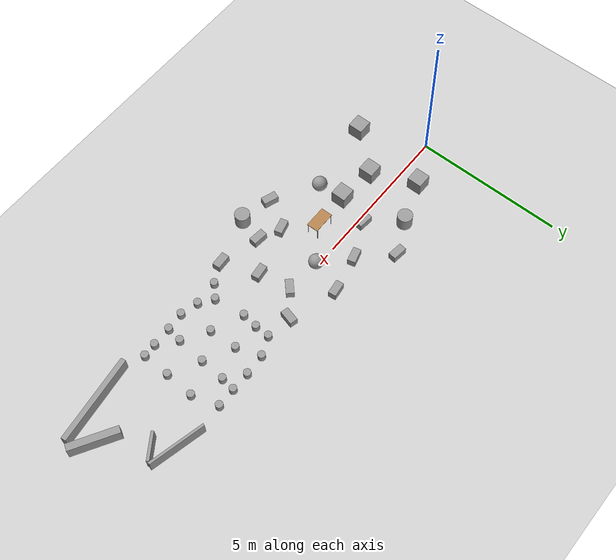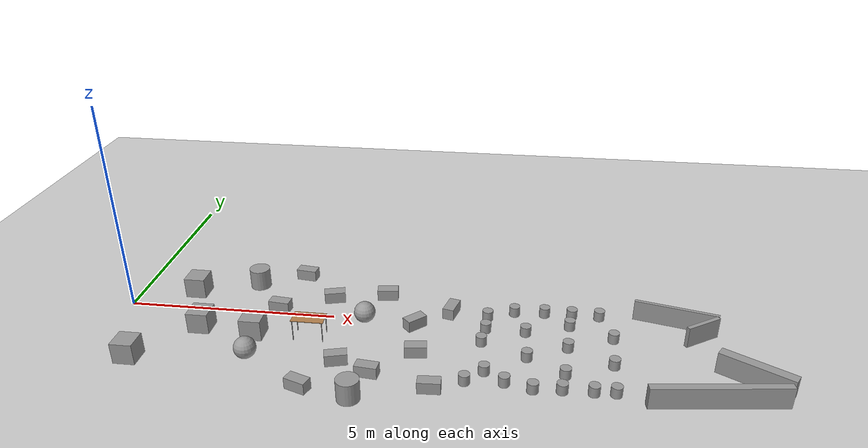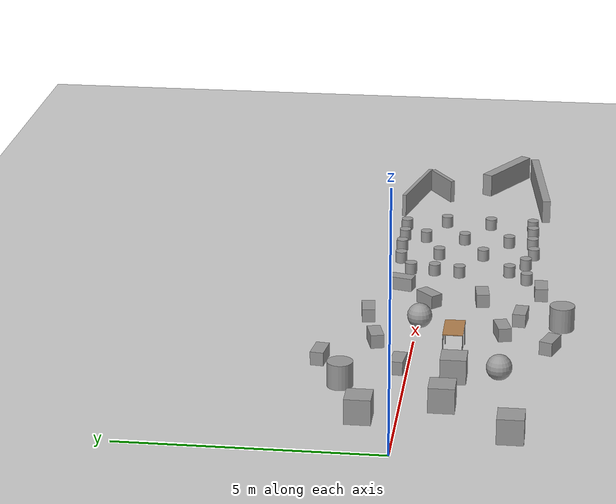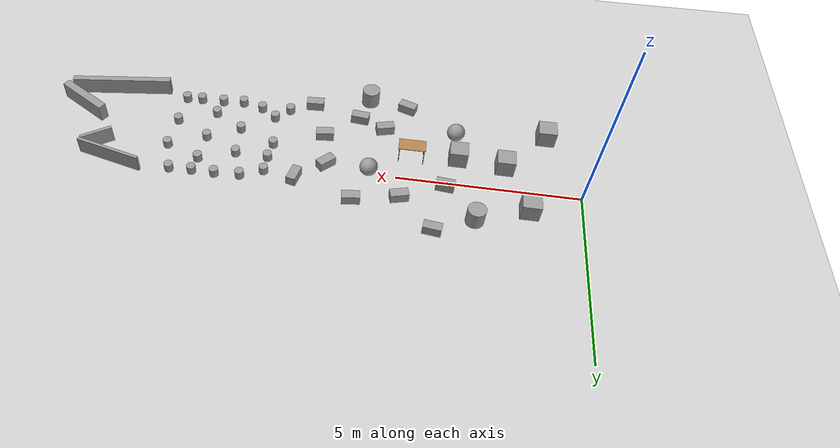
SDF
<sdf version="1.6">
 <world name="default">
  <light name="sun" type="directional">
   <pose>0 0 5 0 -0 0</pose>
   <diffuse>0.8 0.8 0.8 1</diffuse>
   <specular>0.2 0.2 0.2 1</specular>
   <attenuation>
    <range>1000</range>
    <constant>0.9</constant>
    <linear>0.01</linear>
    <quadratic>0.001</quadratic>
   </attenuation>
   <direction>-0.5 0.1 -0.9</direction>
  </light>
  <model name="ground_plane">
   <static>1</static>
   <link name="link">
    <collision name="collision">
     <geometry><plane><normal>0 0 1</normal><size>50 50</size></plane></geometry>
     <surface><friction><ode><mu>100</mu><mu2>50</mu2></ode></friction></surface>
    </collision>
    <visual name="visual">
     <cast_shadows>0</cast_shadows>
     <geometry><plane><normal>0 0 1</normal><size>50 50</size></plane></geometry>
     <material>
      <script><uri>file://media/materials/scripts/gazebo.material</uri><name>Gazebo/Grey</name></script>
     </material>
    </visual>
   </link>
  </model>
  <gravity>0 0 -9.8</gravity>
  <magnetic_field>6e-06 2.3e-05 -4.2e-05</magnetic_field>
  <atmosphere type="adiabatic"/>
  <physics name="default_physics" default="0" type="ode">
   <max_step_size>0.001</max_step_size>
   <real_time_factor>1</real_time_factor>
   <real_time_update_rate>1000</real_time_update_rate>
  </physics>
  <scene><ambient>0.4 0.4 0.4 1</ambient><background>0.7 0.7 0.7 1</background><shadows>1</shadows></scene>
  <spherical_coordinates>
   <surface_model>EARTH_WGS84</surface_model>
   <latitude_deg>0</latitude_deg>
   <longitude_deg>0</longitude_deg>
   <elevation>0</elevation>
   <heading_deg>0</heading_deg>
  </spherical_coordinates>
  <model name="unit_box">
   <pose>1.41205 0.691309 0.25 0 -0 0</pose>
   <link name="link">
    <inertial>
     <mass>1</mass>
     <inertia>
      <ixx>0.166667</ixx>
      <ixy>0</ixy>
      <ixz>0</ixz>
      <iyy>0.166667</iyy>
      <iyz>0</iyz>
      <izz>0.166667</izz>
     </inertia>
    </inertial>
    <collision name="collision"><geometry><box><size>0.5 0.5 0.5</size></box></geometry></collision>
    <visual name="visual">
     <geometry><box><size>0.5 0.5 0.5</size></box></geometry>
     <material>
      <script><name>Gazebo/Grey</name><uri>file://media/materials/scripts/gazebo.material</uri></script>
     </material>
    </visual>
   </link>
  </model>
  <model name="unit_box_0">
   <pose>0.915735 -2.09725 0.25 0 -0 0</pose>
   <link name="link">
    <inertial>
     <mass>1</mass>
     <inertia>
      <ixx>0.166667</ixx>
      <ixy>0</ixy>
      <ixz>0</ixz>
      <iyy>0.166667</iyy>
      <iyz>0</iyz>
      <izz>0.166667</izz>
     </inertia>
    </inertial>
    <collision name="collision"><geometry><box><size>0.5 0.5 0.5</size></box></geometry></collision>
    <visual name="visual">
     <geometry><box><size>0.5 0.5 0.5</size></box></geometry>
     <material>
      <script><name>Gazebo/Grey</name><uri>file://media/materials/scripts/gazebo.material</uri></script>
     </material>
    </visual>
   </link>
  </model>
  <model name="table">
   <static>1</static>
   <link name="link">
    <collision name="surface">
     <pose>0 0 0.5 0 -0 0</pose>
     <geometry><box><size>0.75 0.4 0.015</size></box></geometry>
     <surface><friction><ode><mu>0.6</mu><mu2>0.6</mu2></ode></friction></surface>
    </collision>
    <visual name="visual1">
     <pose>0 0 0.5 0 -0 0</pose>
     <geometry><box><size>0.75 0.4 0.015</size></box></geometry>
     <material>
      <script><uri>file://media/materials/scripts/gazebo.material</uri><name>Gazebo/Wood</name></script>
     </material>
    </visual>
    <collision name="front_left_leg">
     <pose>0.34 0.19 0.25 0 -0 0</pose>
     <geometry><cylinder><radius>0.01</radius><length>0.5</length></cylinder></geometry>
    </collision>
    <visual name="front_left_leg">
     <pose>0.34 0.19 0.25 0 -0 0</pose>
     <geometry><cylinder><radius>0.01</radius><length>0.5</length></cylinder></geometry>
     <material>
      <script><uri>file://media/materials/scripts/gazebo.material</uri><name>Gazebo/Grey</name></script>
     </material>
    </visual>
    <collision name="front_right_leg">
     <pose>0.34 -0.19 0.25 0 -0 0</pose>
     <geometry><cylinder><radius>0.01</radius><length>0.5</length></cylinder></geometry>
    </collision>
    <visual name="front_right_leg">
     <pose>0.34 -0.19 0.25 0 -0 0</pose>
     <geometry><cylinder><radius>0.01</radius><length>0.5</length></cylinder></geometry>
     <material>
      <script><uri>file://media/materials/scripts/gazebo.material</uri><name>Gazebo/Grey</name></script>
     </material>
    </visual>
    <collision name="back_right_leg">
     <pose>-0.34 -0.19 0.25 0 -0 0</pose>
     <geometry><cylinder><radius>0.01</radius><length>0.5</length></cylinder></geometry>
    </collision>
    <visual name="back_right_leg">
     <pose>-0.34 -0.19 0.25 0 -0 0</pose>
     <geometry><cylinder><radius>0.01</radius><length>0.5</length></cylinder></geometry>
     <material>
      <script><uri>file://media/materials/scripts/gazebo.material</uri><name>Gazebo/Grey</name></script>
     </material>
    </visual>
    <collision name="back_left_leg">
     <pose>-0.34 0.19 0.25 0 -0 0</pose>
     <geometry><cylinder><radius>0.01</radius><length>0.5</length></cylinder></geometry>
    </collision>
    <visual name="back_left_leg">
     <pose>-0.34 0.19 0.25 0 -0 0</pose>
     <geometry><cylinder><radius>0.01</radius><length>0.5</length></cylinder></geometry>
     <material>
      <script><uri>file://media/materials/scripts/gazebo.material</uri><name>Gazebo/Grey</name></script>
     </material>
    </visual>
   </link>
   <pose>4.64498 -0.820975 0 0 -0 0</pose>
  </model>
  <model name="unit_box_1">
   <pose>3.35331 -0.90793 0.25 0 -0 0</pose>
   <link name="link">
    <inertial>
     <mass>1</mass>
     <inertia>
      <ixx>0.166667</ixx>
      <ixy>0</ixy>
      <ixz>0</ixz>
      <iyy>0.166667</iyy>
      <iyz>0</iyz>
      <izz>0.166667</izz>
     </inertia>
    </inertial>
    <collision name="collision"><geometry><box><size>0.5 0.5 0.5</size></box></geometry></collision>
    <visual name="visual">
     <geometry><box><size>0.5 0.5 0.5</size></box></geometry>
     <material>
      <script><name>Gazebo/Grey</name><uri>file://media/materials/scripts/gazebo.material</uri></script>
     </material>
    </visual>
   </link>
  </model>
  <model name="unit_cylinder">
   <pose>2.82975 1.19905 0.25 0 -0 0</pose>
   <link name="link">
    <inertial>
     <mass>1</mass>
     <inertia><ixx>0.145833</ixx><ixy>0</ixy><ixz>0</ixz><iyy>0.145833</iyy><iyz>0</iyz><izz>0.125</izz></inertia>
    </inertial>
    <collision name="collision">
     <geometry><cylinder><radius>0.25</radius><length>0.5</length></cylinder></geometry>
    </collision>
    <visual name="visual">
     <geometry><cylinder><radius>0.25</radius><length>0.5</length></cylinder></geometry>
     <material>
      <script><name>Gazebo/Grey</name><uri>file://media/materials/scripts/gazebo.material</uri></script>
     </material>
    </visual>
   </link>
  </model>
  <model name="unit_sphere">
   <pose>3.45289 -1.7625 0.25 0 -0 0</pose>
   <link name="link">
    <inertial>
     <mass>1</mass>
     <inertia><ixx>0.1</ixx><ixy>0</ixy><ixz>0</ixz><iyy>0.1</iyy><iyz>0</iyz><izz>0.1</izz></inertia>
    </inertial>
    <collision name="collision"><geometry><sphere><radius>0.25</radius></sphere></geometry></collision>
    <visual name="visual">
     <geometry><sphere><radius>0.25</radius></sphere></geometry>
     <material>
      <script><name>Gazebo/Grey</name><uri>file://media/materials/scripts/gazebo.material</uri></script>
     </material>
    </visual>
   </link>
  </model>
  <model name="unit_cylinder_0">
   <pose>5.99885 -2.88496 0.249999 0 -0 0</pose>
   <link name="link">
    <inertial>
     <mass>1</mass>
     <inertia><ixx>0.145833</ixx><ixy>0</ixy><ixz>0</ixz><iyy>0.145833</iyy><iyz>0</iyz><izz>0.125</izz></inertia>
    </inertial>
    <collision name="collision">
     <geometry><cylinder><radius>0.25</radius><length>0.5</length></cylinder></geometry>
    </collision>
    <visual name="visual">
     <geometry><cylinder><radius>0.25</radius><length>0.5</length></cylinder></geometry>
     <material>
      <script><name>Gazebo/Grey</name><uri>file://media/materials/scripts/gazebo.material</uri></script>
     </material>
    </visual>
   </link>
  </model>
  <model name="unit_box_1_clone">
   <pose>3.65355 0.173262 0.137139 0 0 -0.106435</pose>
   <link name="link">
    <inertial>
     <mass>1</mass>
     <inertia>
      <ixx>0.166667</ixx>
      <ixy>0</ixy>
      <ixz>0</ixz>
      <iyy>0.166667</iyy>
      <iyz>0</iyz>
      <izz>0.166667</izz>
     </inertia>
    </inertial>
    <collision name="collision"><geometry><box><size>0.5 0.264919 0.274278</size></box></geometry></collision>
    <visual name="visual">
     <geometry><box><size>0.5 0.264919 0.274278</size></box></geometry>
     <material>
      <script><name>Gazebo/Grey</name><uri>file://media/materials/scripts/gazebo.material</uri></script>
     </material>
    </visual>
   </link>
  </model>
  <model name="unit_box_1_clone_0">
   <pose>5.4644 -1.72747 0.137139 0 -0 0.264746</pose>
   <link name="link">
    <inertial>
     <mass>1</mass>
     <inertia>
      <ixx>0.166667</ixx>
      <ixy>0</ixy>
      <ixz>0</ixz>
      <iyy>0.166667</iyy>
      <iyz>0</iyz>
      <izz>0.166667</izz>
     </inertia>
    </inertial>
    <collision name="collision">
     <geometry><box><size>0.499997 0.264919 0.274278</size></box></geometry>
    </collision>
    <visual name="visual">
     <geometry><box><size>0.499997 0.264919 0.274278</size></box></geometry>
     <material>
      <script><name>Gazebo/Grey</name><uri>file://media/materials/scripts/gazebo.material</uri></script>
     </material>
    </visual>
   </link>
  </model>
  <model name="unit_box_1_clone_0_clone_0">
   <pose>4.85947 0.735005 0.137139 0 -0 0.264497</pose>
   <link name="link">
    <inertial>
     <mass>1</mass>
     <inertia>
      <ixx>0.166667</ixx>
      <ixy>0</ixy>
      <ixz>0</ixz>
      <iyy>0.166667</iyy>
      <iyz>0</iyz>
      <izz>0.166667</izz>
     </inertia>
    </inertial>
    <collision name="collision"><geometry><box><size>0.5 0.264919 0.274278</size></box></geometry></collision>
    <visual name="visual">
     <geometry><box><size>0.5 0.264919 0.274278</size></box></geometry>
     <material>
      <script><name>Gazebo/Grey</name><uri>file://media/materials/scripts/gazebo.material</uri></script>
     </material>
    </visual>
   </link>
  </model>
  <model name="unit_box_1_clone_0_clone_1">
   <pose>7.59435 -2.42171 0.137139 0 -0 0.049901</pose>
   <link name="link">
    <inertial>
     <mass>1</mass>
     <inertia>
      <ixx>0.166667</ixx>
      <ixy>0</ixy>
      <ixz>0</ixz>
      <iyy>0.166667</iyy>
      <iyz>0</iyz>
      <izz>0.166667</izz>
     </inertia>
    </inertial>
    <collision name="collision"><geometry><box><size>0.5 0.264919 0.274278</size></box></geometry></collision>
    <visual name="visual">
     <geometry><box><size>0.5 0.264919 0.274278</size></box></geometry>
     <material>
      <script><name>Gazebo/Grey</name><uri>file://media/materials/scripts/gazebo.material</uri></script>
     </material>
    </visual>
   </link>
  </model>
  <model name="unit_box_1_clone_0_clone_2">
   <pose>4.88443 -2.68683 0.137139 0 0 -0.348845</pose>
   <link name="link">
    <inertial>
     <mass>1</mass>
     <inertia>
      <ixx>0.166667</ixx>
      <ixy>0</ixy>
      <ixz>0</ixz>
      <iyy>0.166667</iyy>
      <iyz>0</iyz>
      <izz>0.166667</izz>
     </inertia>
    </inertial>
    <collision name="collision"><geometry><box><size>0.5 0.264919 0.274278</size></box></geometry></collision>
    <visual name="visual">
     <geometry><box><size>0.5 0.264919 0.274278</size></box></geometry>
     <material>
      <script><name>Gazebo/Grey</name><uri>file://media/materials/scripts/gazebo.material</uri></script>
     </material>
    </visual>
   </link>
  </model>
  <model name="unit_box_1_clone_0_clone_3">
   <pose>6.966 -0.156851 0.137139 0 -0 0.75764</pose>
   <link name="link">
    <inertial>
     <mass>1</mass>
     <inertia>
      <ixx>0.166667</ixx>
      <ixy>0</ixy>
      <ixz>0</ixz>
      <iyy>0.166667</iyy>
      <iyz>0</iyz>
      <izz>0.166667</izz>
     </inertia>
    </inertial>
    <collision name="collision"><geometry><box><size>0.5 0.264919 0.274278</size></box></geometry></collision>
    <visual name="visual">
     <geometry><box><size>0.5 0.264919 0.274278</size></box></geometry>
     <material>
      <script><name>Gazebo/Grey</name><uri>file://media/materials/scripts/gazebo.material</uri></script>
     </material>
    </visual>
   </link>
  </model>
  <model name="unit_box_1_clone_0_clone_4">
   <pose>7.1417 -1.2349 0.137139 0 -0 0.119992</pose>
   <link name="link">
    <inertial>
     <mass>1</mass>
     <inertia>
      <ixx>0.166667</ixx>
      <ixy>0</ixy>
      <ixz>0</ixz>
      <iyy>0.166667</iyy>
      <iyz>0</iyz>
      <izz>0.166667</izz>
     </inertia>
    </inertial>
    <collision name="collision"><geometry><box><size>0.5 0.264919 0.274278</size></box></geometry></collision>
    <visual name="visual">
     <geometry><box><size>0.5 0.264919 0.274278</size></box></geometry>
     <material>
      <script><name>Gazebo/Grey</name><uri>file://media/materials/scripts/gazebo.material</uri></script>
     </material>
    </visual>
   </link>
  </model>
  <model name="unit_box_1_clone_0_clone_5">
   <pose>7.75705 0.468772 0.137139 0 -0 1.31902</pose>
   <link name="link">
    <inertial>
     <mass>1</mass>
     <inertia>
      <ixx>0.166667</ixx>
      <ixy>0</ixy>
      <ixz>0</ixz>
      <iyy>0.166667</iyy>
      <iyz>0</iyz>
      <izz>0.166667</izz>
     </inertia>
    </inertial>
    <collision name="collision"><geometry><box><size>0.5 0.264919 0.274278</size></box></geometry></collision>
    <visual name="visual">
     <geometry><box><size>0.5 0.264919 0.274278</size></box></geometry>
     <material>
      <script><name>Gazebo/Grey</name><uri>file://media/materials/scripts/gazebo.material</uri></script>
     </material>
    </visual>
   </link>
  </model>
  <model name="unit_cylinder_0_clone">
   <pose>8.545 -0.671139 0.121276 0 -1e-06 1e-06</pose>
   <link name="link">
    <inertial>
     <mass>1</mass>
     <inertia><ixx>0.145833</ixx><ixy>0</ixy><ixz>0</ixz><iyy>0.145833</iyy><iyz>0</iyz><izz>0.125</izz></inertia>
    </inertial>
    <collision name="collision">
     <geometry><cylinder><radius>0.1247</radius><length>0.242563</length></cylinder></geometry>
    </collision>
    <visual name="visual">
     <geometry><cylinder><radius>0.1247</radius><length>0.242563</length></cylinder></geometry>
     <material>
      <script><name>Gazebo/Grey</name><uri>file://media/materials/scripts/gazebo.material</uri></script>
     </material>
    </visual>
   </link>
  </model>
  <model name="unit_cylinder_0_clone_0">
   <pose>8.60965 -0.143396 0.121279 0 -0 0</pose>
   <link name="link">
    <inertial>
     <mass>1</mass>
     <inertia><ixx>0.145833</ixx><ixy>0</ixy><ixz>0</ixz><iyy>0.145833</iyy><iyz>0</iyz><izz>0.125</izz></inertia>
    </inertial>
    <collision name="collision">
     <geometry><cylinder><radius>0.1247</radius><length>0.242563</length></cylinder></geometry>
    </collision>
    <visual name="visual">
     <geometry><cylinder><radius>0.1247</radius><length>0.242563</length></cylinder></geometry>
     <material>
      <script><name>Gazebo/Grey</name><uri>file://media/materials/scripts/gazebo.material</uri></script>
     </material>
    </visual>
   </link>
  </model>
  <model name="unit_cylinder_0_clone_1">
   <pose>8.62635 0.360673 0.12128 0 -1e-06 0</pose>
   <link name="link">
    <inertial>
     <mass>1</mass>
     <inertia><ixx>0.145833</ixx><ixy>0</ixy><ixz>0</ixz><iyy>0.145833</iyy><iyz>0</iyz><izz>0.125</izz></inertia>
    </inertial>
    <collision name="collision">
     <geometry><cylinder><radius>0.1247</radius><length>0.242563</length></cylinder></geometry>
    </collision>
    <visual name="visual">
     <geometry><cylinder><radius>0.1247</radius><length>0.242563</length></cylinder></geometry>
     <material>
      <script><name>Gazebo/Grey</name><uri>file://media/materials/scripts/gazebo.material</uri></script>
     </material>
    </visual>
   </link>
  </model>
  <model name="unit_cylinder_0_clone_2">
   <pose>8.67715 -1.72093 0.121281 0 -1e-06 0</pose>
   <link name="link">
    <inertial>
     <mass>1</mass>
     <inertia><ixx>0.145833</ixx><ixy>0</ixy><ixz>0</ixz><iyy>0.145833</iyy><iyz>0</iyz><izz>0.125</izz></inertia>
    </inertial>
    <collision name="collision">
     <geometry><cylinder><radius>0.1247</radius><length>0.242563</length></cylinder></geometry>
    </collision>
    <visual name="visual">
     <geometry><cylinder><radius>0.1247</radius><length>0.242563</length></cylinder></geometry>
     <material>
      <script><name>Gazebo/Grey</name><uri>file://media/materials/scripts/gazebo.material</uri></script>
     </material>
    </visual>
   </link>
  </model>
  <model name="unit_box_3">
   <pose>2.06718 -0.78374 0.25 0 0 -6e-06</pose>
   <link name="link">
    <inertial>
     <mass>1</mass>
     <inertia>
      <ixx>0.166667</ixx>
      <ixy>0</ixy>
      <ixz>0</ixz>
      <iyy>0.166667</iyy>
      <iyz>0</iyz>
      <izz>0.166667</izz>
     </inertia>
    </inertial>
    <collision name="collision"><geometry><box><size>0.5 0.5 0.5</size></box></geometry></collision>
    <visual name="visual">
     <geometry><box><size>0.5 0.5 0.5</size></box></geometry>
     <material>
      <script><name>Gazebo/Grey</name><uri>file://media/materials/scripts/gazebo.material</uri></script>
     </material>
    </visual>
   </link>
  </model>
  <model name="unit_box_1_clone_0_clone_4_clone">
   <pose>6.2153 -2.05672 0.137139 0 0 -0.102986</pose>
   <link name="link">
    <inertial>
     <mass>1</mass>
     <inertia>
      <ixx>0.166667</ixx>
      <ixy>0</ixy>
      <ixz>0</ixz>
      <iyy>0.166667</iyy>
      <iyz>0</iyz>
      <izz>0.166667</izz>
     </inertia>
    </inertial>
    <collision name="collision"><geometry><box><size>0.5 0.264919 0.274278</size></box></geometry></collision>
    <visual name="visual">
     <geometry><box><size>0.5 0.264919 0.274278</size></box></geometry>
     <material>
      <script><name>Gazebo/Grey</name><uri>file://media/materials/scripts/gazebo.material</uri></script>
     </material>
    </visual>
   </link>
  </model>
  <model name="unit_box_1_clone_0_clone_4_clone_0">
   <pose>6.13025 1.00537 0.137139 0 -0 0.119992</pose>
   <link name="link">
    <inertial>
     <mass>1</mass>
     <inertia>
      <ixx>0.166667</ixx>
      <ixy>0</ixy>
      <ixz>0</ixz>
      <iyy>0.166667</iyy>
      <iyz>0</iyz>
      <izz>0.166667</izz>
     </inertia>
    </inertial>
    <collision name="collision"><geometry><box><size>0.5 0.264919 0.274278</size></box></geometry></collision>
    <visual name="visual">
     <geometry><box><size>0.5 0.264919 0.274278</size></box></geometry>
     <material>
      <script><name>Gazebo/Grey</name><uri>file://media/materials/scripts/gazebo.material</uri></script>
     </material>
    </visual>
   </link>
  </model>
  <model name="unit_box_1_clone_0_clone_4_clone_1">
   <pose>3.91643 1.71633 0.137139 0 0 -0.12617</pose>
   <link name="link">
    <inertial>
     <mass>1</mass>
     <inertia>
      <ixx>0.166667</ixx>
      <ixy>0</ixy>
      <ixz>0</ixz>
      <iyy>0.166667</iyy>
      <iyz>0</iyz>
      <izz>0.166667</izz>
     </inertia>
    </inertial>
    <collision name="collision"><geometry><box><size>0.5 0.264919 0.274278</size></box></geometry></collision>
    <visual name="visual">
     <geometry><box><size>0.5 0.264919 0.274278</size></box></geometry>
     <material>
      <script><name>Gazebo/Grey</name><uri>file://media/materials/scripts/gazebo.material</uri></script>
     </material>
    </visual>
   </link>
  </model>
  <model name="unit_sphere_0">
   <pose>5.7666 -0.061668 0.25 0 -0 0</pose>
   <link name="link">
    <inertial>
     <mass>1</mass>
     <inertia><ixx>0.1</ixx><ixy>0</ixy><ixz>0</ixz><iyy>0.1</iyy><iyz>0</iyz><izz>0.1</izz></inertia>
    </inertial>
    <collision name="collision"><geometry><sphere><radius>0.25</radius></sphere></geometry></collision>
    <visual name="visual">
     <geometry><sphere><radius>0.25</radius></sphere></geometry>
     <material>
      <script><name>Gazebo/Grey</name><uri>file://media/materials/scripts/gazebo.material</uri></script>
     </material>
    </visual>
   </link>
  </model>
  <model name="unit_cylinder_0_clone_1_clone">
   <pose>8.28875 -2.09985 0.121273 0 -0 0</pose>
   <link name="link">
    <inertial>
     <mass>1</mass>
     <inertia><ixx>0.145833</ixx><ixy>0</ixy><ixz>0</ixz><iyy>0.145833</iyy><iyz>0</iyz><izz>0.125</izz></inertia>
    </inertial>
    <collision name="collision">
     <geometry><cylinder><radius>0.1247</radius><length>0.242563</length></cylinder></geometry>
    </collision>
    <visual name="visual">
     <geometry><cylinder><radius>0.1247</radius><length>0.242563</length></cylinder></geometry>
     <material>
      <script><name>Gazebo/Grey</name><uri>file://media/materials/scripts/gazebo.material</uri></script>
     </material>
    </visual>
   </link>
  </model>
  <model name="unit_cylinder_0_clone_1_clone_0">
   <pose>9.1195 -2.04909 0.121273 0 -0 0</pose>
   <link name="link">
    <inertial>
     <mass>1</mass>
     <inertia><ixx>0.145833</ixx><ixy>0</ixy><ixz>0</ixz><iyy>0.145833</iyy><iyz>0</iyz><izz>0.125</izz></inertia>
    </inertial>
    <collision name="collision">
     <geometry><cylinder><radius>0.1247</radius><length>0.242563</length></cylinder></geometry>
    </collision>
    <visual name="visual">
     <geometry><cylinder><radius>0.1247</radius><length>0.242563</length></cylinder></geometry>
     <material>
      <script><name>Gazebo/Grey</name><uri>file://media/materials/scripts/gazebo.material</uri></script>
     </material>
    </visual>
   </link>
  </model>
  <model name="unit_cylinder_0_clone_1_clone_1">
   <pose>9.2483 0.62293 0.121282 0 -0 0</pose>
   <link name="link">
    <inertial>
     <mass>1</mass>
     <inertia><ixx>0.145833</ixx><ixy>0</ixy><ixz>0</ixz><iyy>0.145833</iyy><iyz>0</iyz><izz>0.125</izz></inertia>
    </inertial>
    <collision name="collision">
     <geometry><cylinder><radius>0.1247</radius><length>0.242563</length></cylinder></geometry>
    </collision>
    <visual name="visual">
     <geometry><cylinder><radius>0.1247</radius><length>0.242563</length></cylinder></geometry>
     <material>
      <script><name>Gazebo/Grey</name><uri>file://media/materials/scripts/gazebo.material</uri></script>
     </material>
    </visual>
   </link>
  </model>
  <model name="unit_cylinder_0_clone_1_clone_2">
   <pose>9.95675 0.66406 0.121282 0 -0 0</pose>
   <link name="link">
    <inertial>
     <mass>1</mass>
     <inertia><ixx>0.145833</ixx><ixy>0</ixy><ixz>0</ixz><iyy>0.145833</iyy><iyz>0</iyz><izz>0.125</izz></inertia>
    </inertial>
    <collision name="collision">
     <geometry><cylinder><radius>0.1247</radius><length>0.242563</length></cylinder></geometry>
    </collision>
    <visual name="visual">
     <geometry><cylinder><radius>0.1247</radius><length>0.242563</length></cylinder></geometry>
     <material>
      <script><name>Gazebo/Grey</name><uri>file://media/materials/scripts/gazebo.material</uri></script>
     </material>
    </visual>
   </link>
  </model>
  <model name="unit_cylinder_0_clone_1_clone_3">
   <pose>9.7124 -2.19988 0.121282 0 -0 0</pose>
   <link name="link">
    <inertial>
     <mass>1</mass>
     <inertia><ixx>0.145833</ixx><ixy>0</ixy><ixz>0</ixz><iyy>0.145833</iyy><iyz>0</iyz><izz>0.125</izz></inertia>
    </inertial>
    <collision name="collision">
     <geometry><cylinder><radius>0.1247</radius><length>0.242563</length></cylinder></geometry>
    </collision>
    <visual name="visual">
     <geometry><cylinder><radius>0.1247</radius><length>0.242563</length></cylinder></geometry>
     <material>
      <script><name>Gazebo/Grey</name><uri>file://media/materials/scripts/gazebo.material</uri></script>
     </material>
    </visual>
   </link>
  </model>
  <model name="unit_cylinder_0_clone_1_clone_4">
   <pose>10.317 -2.15435 0.121282 0 0 -0.047556</pose>
   <link name="link">
    <inertial>
     <mass>1</mass>
     <inertia><ixx>0.145833</ixx><ixy>0</ixy><ixz>0</ixz><iyy>0.145833</iyy><iyz>0</iyz><izz>0.125</izz></inertia>
    </inertial>
    <collision name="collision">
     <geometry><cylinder><radius>0.1247</radius><length>0.242563</length></cylinder></geometry>
    </collision>
    <visual name="visual">
     <geometry><cylinder><radius>0.1247</radius><length>0.242563</length></cylinder></geometry>
     <material>
      <script><name>Gazebo/Grey</name><uri>file://media/materials/scripts/gazebo.material</uri></script>
     </material>
    </visual>
   </link>
  </model>
  <model name="unit_cylinder_0_clone_1_clone_5">
   <pose>10.9658 -2.14328 0.121282 0 -0 0.032856</pose>
   <link name="link">
    <inertial>
     <mass>1</mass>
     <inertia><ixx>0.145833</ixx><ixy>0</ixy><ixz>0</ixz><iyy>0.145833</iyy><iyz>0</iyz><izz>0.125</izz></inertia>
    </inertial>
    <collision name="collision">
     <geometry><cylinder><radius>0.1247</radius><length>0.242563</length></cylinder></geometry>
    </collision>
    <visual name="visual">
     <geometry><cylinder><radius>0.1247</radius><length>0.242563</length></cylinder></geometry>
     <material>
      <script><name>Gazebo/Grey</name><uri>file://media/materials/scripts/gazebo.material</uri></script>
     </material>
    </visual>
   </link>
  </model>
  <model name="unit_cylinder_0_clone_1_clone_6">
   <pose>10.5955 0.65588 0.121282 0 -0 0</pose>
   <link name="link">
    <inertial>
     <mass>1</mass>
     <inertia><ixx>0.145833</ixx><ixy>0</ixy><ixz>0</ixz><iyy>0.145833</iyy><iyz>0</iyz><izz>0.125</izz></inertia>
    </inertial>
    <collision name="collision">
     <geometry><cylinder><radius>0.1247</radius><length>0.242563</length></cylinder></geometry>
    </collision>
    <visual name="visual">
     <geometry><cylinder><radius>0.1247</radius><length>0.242563</length></cylinder></geometry>
     <material>
      <script><name>Gazebo/Grey</name><uri>file://media/materials/scripts/gazebo.material</uri></script>
     </material>
    </visual>
   </link>
  </model>
  <model name="unit_cylinder_0_clone_1_clone_7">
   <pose>11.2338 0.671365 0.121282 0 -0 0</pose>
   <link name="link">
    <inertial>
     <mass>1</mass>
     <inertia><ixx>0.145833</ixx><ixy>0</ixy><ixz>0</ixz><iyy>0.145833</iyy><iyz>0</iyz><izz>0.125</izz></inertia>
    </inertial>
    <collision name="collision">
     <geometry><cylinder><radius>0.1247</radius><length>0.242563</length></cylinder></geometry>
    </collision>
    <visual name="visual">
     <geometry><cylinder><radius>0.1247</radius><length>0.242563</length></cylinder></geometry>
     <material>
      <script><name>Gazebo/Grey</name><uri>file://media/materials/scripts/gazebo.material</uri></script>
     </material>
    </visual>
   </link>
  </model>
  <model name="unit_cylinder_0_clone_1_clone_8">
   <pose>11.4171 -2.12035 0.121282 0 0 -0.013968</pose>
   <link name="link">
    <inertial>
     <mass>1</mass>
     <inertia><ixx>0.145833</ixx><ixy>0</ixy><ixz>0</ixz><iyy>0.145833</iyy><iyz>0</iyz><izz>0.125</izz></inertia>
    </inertial>
    <collision name="collision">
     <geometry><cylinder><radius>0.1247</radius><length>0.242563</length></cylinder></geometry>
    </collision>
    <visual name="visual">
     <geometry><cylinder><radius>0.1247</radius><length>0.242563</length></cylinder></geometry>
     <material>
      <script><name>Gazebo/Grey</name><uri>file://media/materials/scripts/gazebo.material</uri></script>
     </material>
    </visual>
   </link>
  </model>
  <model name="unit_cylinder_0_clone_1_clone_9">
   <pose>9.57045 -1.11878 0.121281 0 -0 0</pose>
   <link name="link">
    <inertial>
     <mass>1</mass>
     <inertia><ixx>0.145833</ixx><ixy>0</ixy><ixz>0</ixz><iyy>0.145833</iyy><iyz>0</iyz><izz>0.125</izz></inertia>
    </inertial>
    <collision name="collision">
     <geometry><cylinder><radius>0.1247</radius><length>0.242563</length></cylinder></geometry>
    </collision>
    <visual name="visual">
     <geometry><cylinder><radius>0.1247</radius><length>0.242563</length></cylinder></geometry>
     <material>
      <script><name>Gazebo/Grey</name><uri>file://media/materials/scripts/gazebo.material</uri></script>
     </material>
    </visual>
   </link>
  </model>
  <model name="unit_cylinder_0_clone_1_clone_10">
   <pose>9.52595 -0.174898 0.121282 0 -0 0</pose>
   <link name="link">
    <inertial>
     <mass>1</mass>
     <inertia><ixx>0.145833</ixx><ixy>0</ixy><ixz>0</ixz><iyy>0.145833</iyy><iyz>0</iyz><izz>0.125</izz></inertia>
    </inertial>
    <collision name="collision">
     <geometry><cylinder><radius>0.1247</radius><length>0.242563</length></cylinder></geometry>
    </collision>
    <visual name="visual">
     <geometry><cylinder><radius>0.1247</radius><length>0.242563</length></cylinder></geometry>
     <material>
      <script><name>Gazebo/Grey</name><uri>file://media/materials/scripts/gazebo.material</uri></script>
     </material>
    </visual>
   </link>
  </model>
  <model name="unit_cylinder_0_clone_1_clone_11">
   <pose>10.5338 0.184145 0.121282 0 -0 0</pose>
   <link name="link">
    <inertial>
     <mass>1</mass>
     <inertia><ixx>0.145833</ixx><ixy>0</ixy><ixz>0</ixz><iyy>0.145833</iyy><iyz>0</iyz><izz>0.125</izz></inertia>
    </inertial>
    <collision name="collision">
     <geometry><cylinder><radius>0.1247</radius><length>0.242563</length></cylinder></geometry>
    </collision>
    <visual name="visual">
     <geometry><cylinder><radius>0.1247</radius><length>0.242563</length></cylinder></geometry>
     <material>
      <script><name>Gazebo/Grey</name><uri>file://media/materials/scripts/gazebo.material</uri></script>
     </material>
    </visual>
   </link>
  </model>
  <model name="unit_cylinder_0_clone_1_clone_12">
   <pose>10.4746 -0.665041 0.121282 0 -0 0</pose>
   <link name="link">
    <inertial>
     <mass>1</mass>
     <inertia><ixx>0.145833</ixx><ixy>0</ixy><ixz>0</ixz><iyy>0.145833</iyy><iyz>0</iyz><izz>0.125</izz></inertia>
    </inertial>
    <collision name="collision">
     <geometry><cylinder><radius>0.1247</radius><length>0.242563</length></cylinder></geometry>
    </collision>
    <visual name="visual">
     <geometry><cylinder><radius>0.1247</radius><length>0.242563</length></cylinder></geometry>
     <material>
      <script><name>Gazebo/Grey</name><uri>file://media/materials/scripts/gazebo.material</uri></script>
     </material>
    </visual>
   </link>
  </model>
  <model name="unit_cylinder_0_clone_1_clone_13">
   <pose>10.3932 -1.63957 0.121282 0 -0 0</pose>
   <link name="link">
    <inertial>
     <mass>1</mass>
     <inertia><ixx>0.145833</ixx><ixy>0</ixy><ixz>0</ixz><iyy>0.145833</iyy><iyz>0</iyz><izz>0.125</izz></inertia>
    </inertial>
    <collision name="collision">
     <geometry><cylinder><radius>0.1247</radius><length>0.242563</length></cylinder></geometry>
    </collision>
    <visual name="visual">
     <geometry><cylinder><radius>0.1247</radius><length>0.242563</length></cylinder></geometry>
     <material>
      <script><name>Gazebo/Grey</name><uri>file://media/materials/scripts/gazebo.material</uri></script>
     </material>
    </visual>
   </link>
  </model>
  <model name="unit_cylinder_0_clone_1_clone_14">
   <pose>11.4467 -1.18921 0.121281 0 -0 1e-06</pose>
   <link name="link">
    <inertial>
     <mass>1</mass>
     <inertia><ixx>0.145833</ixx><ixy>0</ixy><ixz>0</ixz><iyy>0.145833</iyy><iyz>0</iyz><izz>0.125</izz></inertia>
    </inertial>
    <collision name="collision">
     <geometry><cylinder><radius>0.1247</radius><length>0.242563</length></cylinder></geometry>
    </collision>
    <visual name="visual">
     <geometry><cylinder><radius>0.1247</radius><length>0.242563</length></cylinder></geometry>
     <material>
      <script><name>Gazebo/Grey</name><uri>file://media/materials/scripts/gazebo.material</uri></script>
     </material>
    </visual>
   </link>
  </model>
  <model name="unit_cylinder_0_clone_1_clone_15">
   <pose>11.5015 -0.207908 0.121281 0 -0 0</pose>
   <link name="link">
    <inertial>
     <mass>1</mass>
     <inertia><ixx>0.145833</ixx><ixy>0</ixy><ixz>0</ixz><iyy>0.145833</iyy><iyz>0</iyz><izz>0.125</izz></inertia>
    </inertial>
    <collision name="collision">
     <geometry><cylinder><radius>0.1247</radius><length>0.242563</length></cylinder></geometry>
    </collision>
    <visual name="visual">
     <geometry><cylinder><radius>0.1247</radius><length>0.242563</length></cylinder></geometry>
     <material>
      <script><name>Gazebo/Grey</name><uri>file://media/materials/scripts/gazebo.material</uri></script>
     </material>
    </visual>
   </link>
  </model>
  <model name="unit_box_4">
   <pose>12.9566 0.590971 0.25 3e-06 -0 -0.240706</pose>
   <link name="link">
    <inertial>
     <mass>1</mass>
     <inertia>
      <ixx>0.166667</ixx>
      <ixy>0</ixy>
      <ixz>0</ixz>
      <iyy>0.166667</iyy>
      <iyz>0</iyz>
      <izz>0.166667</izz>
     </inertia>
    </inertial>
    <collision name="collision">
     <geometry><box><size>1.90081 0.0847953 0.499999</size></box></geometry>
    </collision>
    <visual name="visual">
     <geometry><box><size>1.90081 0.0847953 0.499999</size></box></geometry>
     <material>
      <script><name>Gazebo/Grey</name><uri>file://media/materials/scripts/gazebo.material</uri></script>
     </material>
    </visual>
   </link>
  </model>
  <model name="unit_box_5">
   <pose>13.4679 0.043919 0.250001 -1.5e-05 -0 0.58813</pose>
   <link name="link">
    <inertial>
     <mass>1</mass>
     <inertia>
      <ixx>0.166667</ixx>
      <ixy>0</ixy>
      <ixz>0</ixz>
      <iyy>0.166667</iyy>
      <iyz>0</iyz>
      <izz>0.166667</izz>
     </inertia>
    </inertial>
    <collision name="collision"><geometry><box><size>0.906555 0.0972119 0.5</size></box></geometry></collision>
    <visual name="visual">
     <geometry><box><size>0.906555 0.0972119 0.5</size></box></geometry>
     <material>
      <script><name>Gazebo/Grey</name><uri>file://media/materials/scripts/gazebo.material</uri></script>
     </material>
    </visual>
   </link>
  </model>
  <model name="unit_box_6">
   <pose>14.3103 -1.39331 0.249988 -1.5e-05 0 1.02653</pose>
   <link name="link">
    <inertial>
     <mass>1</mass>
     <inertia>
      <ixx>0.166667</ixx>
      <ixy>0</ixy>
      <ixz>0</ixz>
      <iyy>0.166667</iyy>
      <iyz>0</iyz>
      <izz>0.166667</izz>
     </inertia>
    </inertial>
    <collision name="collision"><geometry><box><size>0.238512 1.6129 0.5</size></box></geometry></collision>
    <visual name="visual">
     <geometry><box><size>0.238512 1.6129 0.5</size></box></geometry>
     <material>
      <script><name>Gazebo/Grey</name><uri>file://media/materials/scripts/gazebo.material</uri></script>
     </material>
    </visual>
   </link>
  </model>
  <model name="unit_box_7">
   <pose>13.4209 -2.21174 0.249762 -5e-06 0.000165 0.124664</pose>
   <link name="link">
    <inertial>
     <mass>1</mass>
     <inertia>
      <ixx>0.166667</ixx>
      <ixy>0</ixy>
      <ixz>0</ixz>
      <iyy>0.166667</iyy>
      <iyz>0</iyz>
      <izz>0.166667</izz>
     </inertia>
    </inertial>
    <collision name="collision"><geometry><box><size>2.90403 0.174629 0.500003</size></box></geometry></collision>
    <visual name="visual">
     <geometry><box><size>2.90403 0.174629 0.500003</size></box></geometry>
     <material>
      <script><name>Gazebo/Grey</name><uri>file://media/materials/scripts/gazebo.material</uri></script>
     </material>
    </visual>
   </link>
  </model>
 </world>
</sdf>
